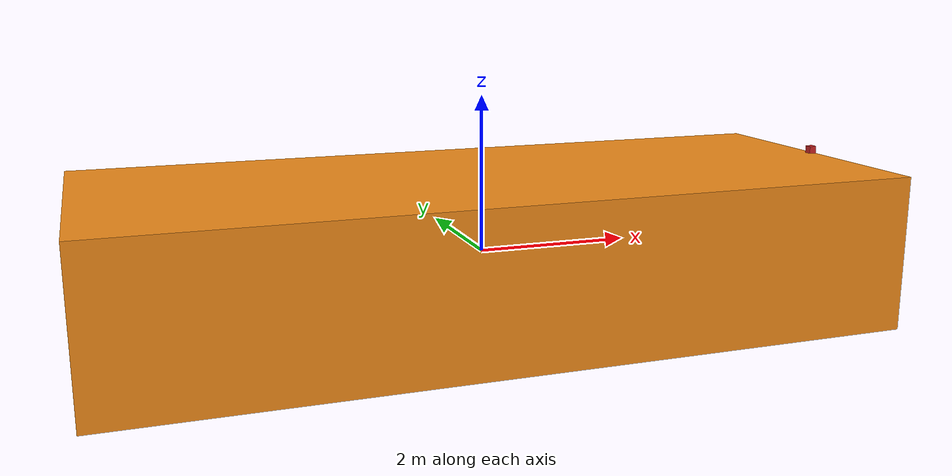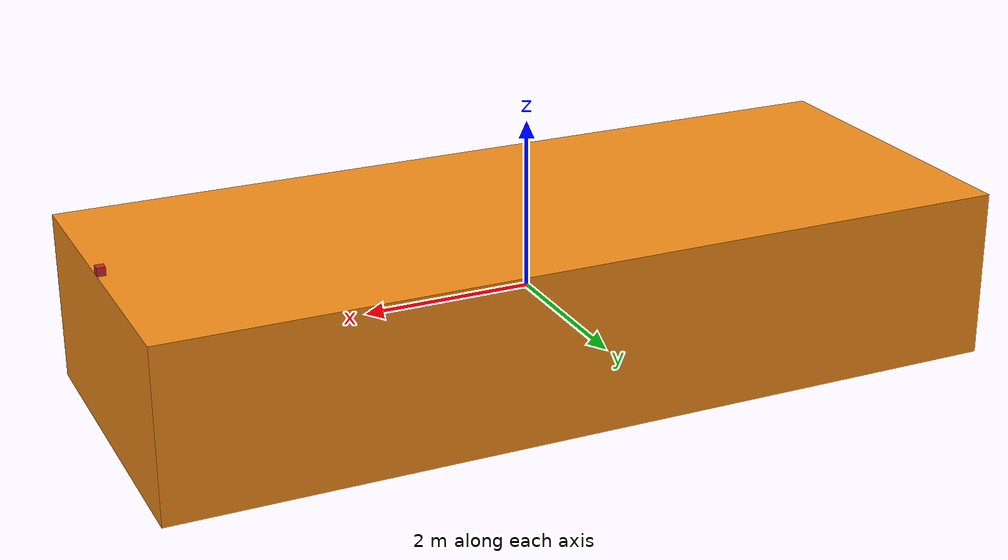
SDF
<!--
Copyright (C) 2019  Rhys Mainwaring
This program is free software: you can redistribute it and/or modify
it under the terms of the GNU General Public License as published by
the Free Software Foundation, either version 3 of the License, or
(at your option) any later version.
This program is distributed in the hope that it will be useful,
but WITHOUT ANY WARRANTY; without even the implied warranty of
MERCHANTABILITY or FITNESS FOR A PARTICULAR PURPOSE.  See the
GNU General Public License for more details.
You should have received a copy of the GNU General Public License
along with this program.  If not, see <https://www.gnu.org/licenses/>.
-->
<?xml version="1.0" ?>
<sdf version="1.6">
  <model name="bbot">
    <static>false</static>

    <plugin name="hydrodynamics" filename="libHydrodynamicsPlugin.so">
      <!-- Wave Model -->
      <wave_model>ocean</wave_model>

      <!-- Hydrodynamics -->
      <damping_on>true</damping_on>
      <viscous_drag_on>true</viscous_drag_on>
      <pressure_drag_on>true</pressure_drag_on>

      <!-- Markers -->
      <markers>
        <update_rate>30</update_rate>
        <water_patch>false</water_patch>
        <waterline>false</waterline>
        <underwater_surface>false</underwater_surface>
      </markers>
    </plugin>

    <!-- Base (main hull) -->
    <link name="base_link">
      <visual name="base_visual">
        <geometry>
          <box>
            <size>10 4 2</size>
          </box>
        </geometry>
        <material>
          <script>
            <uri>__default__</uri>
            <name>Gazebo/Orange</name>
          </script>
        </material>
      </visual>

      <collision name="base_collision">
        <geometry>
          <box>
            <size>10 4 2</size>
          </box>
        </geometry>
      </collision>

      <!-- Mass and inertial assume volume is 0.25 densitity of water -->
      <inertial>
        <pose>0 0 0 0 0 0</pose>
        <mass>20000</mass>
        <inertia>
          <ixx>33333</ixx>
          <ixy>0.0</ixy>
          <ixz>0.0</ixz>
          <iyy>173333</iyy>
          <iyz>0.0</iyz>
          <izz>193333</izz>
        </inertia>
      </inertial>

    </link>

    <!-- Camera -->
    <link name="camera_link">
      <pose>4.95 0 1.05 0 0 0</pose>

      <visual name="camera_visual">
        <geometry>
          <box>
            <size>0.1 0.1 0.1</size>
          </box>
        </geometry>
        <material>
          <script>
            <uri>__default__</uri>
            <name>Gazebo/Red</name>
          </script>
        </material>
      </visual>

      <collision name="camera_collision">
        <geometry>
          <box>
            <size>0.1 0.1 0.1</size>
          </box>
        </geometry>
      </collision>

      <inertial>
        <pose>0 0 0 0 0 0</pose>
        <mass>0.1</mass>
        <inertia>
          <ixx>0.001</ixx>
          <ixy>0.0</ixy>
          <ixz>0.0</ixz>
          <iyy>0.001</iyy>
          <iyz>0.0</iyz>
          <izz>0.001</izz>
        </inertia>
      </inertial>

      <sensor type="camera" name="camera1">
        <always_on>1</always_on>>
        <update_rate>30.0</update_rate>
        <camera name="head">
          <horizontal_fov>1.047</horizontal_fov>
          <image>
            <width>800</width>
            <height>800</height>
            <format>R8G8B8</format>
          </image>
          <clip>
            <near>0.02</near>
            <far>300</far>
          </clip>
        </camera>
        <plugin name="camera_controller" filename="libgazebo_ros_camera.so">
          <alwaysOn>true</alwaysOn>
          <updateRate>0.0</updateRate>
          <cameraName>rrbot/camera1</cameraName>
          <imageTopicName>image_raw</imageTopicName>
          <cameraInfoTopicName>camera_info</cameraInfoTopicName>
          <frameName>camera_link_optical</frameName>
          <hackBaseline>0.07</hackBaseline>
          <distortionK1>0.0</distortionK1>
          <distortionK2>0.0</distortionK2>
          <distortionK3>0.0</distortionK3>
          <distortionT1>0.0</distortionT1>
          <distortionT2>0.0</distortionT2>
        </plugin>
      </sensor>

    </link>

    <joint type="fixed" name="base_camera_joint">
      <pose>0 0 0 0 0 0</pose>
      <child>camera_link</child>
      <parent>base_link</parent>
    </joint>

  </model>
</sdf>
